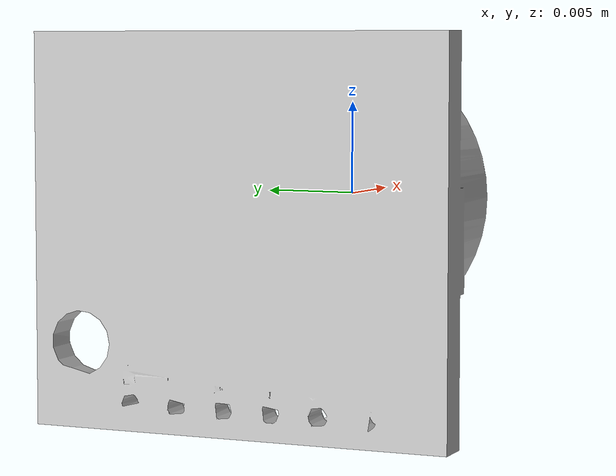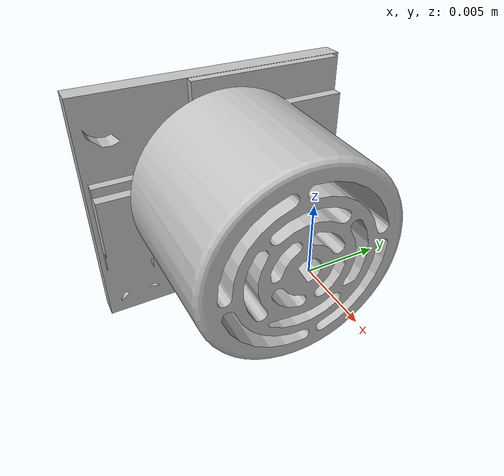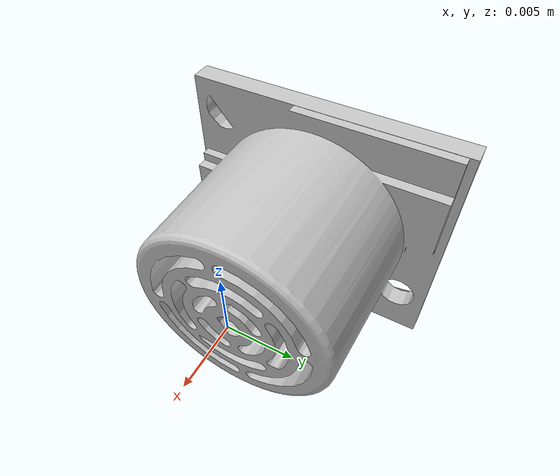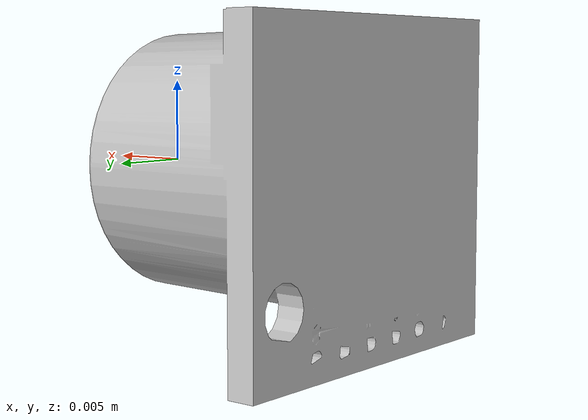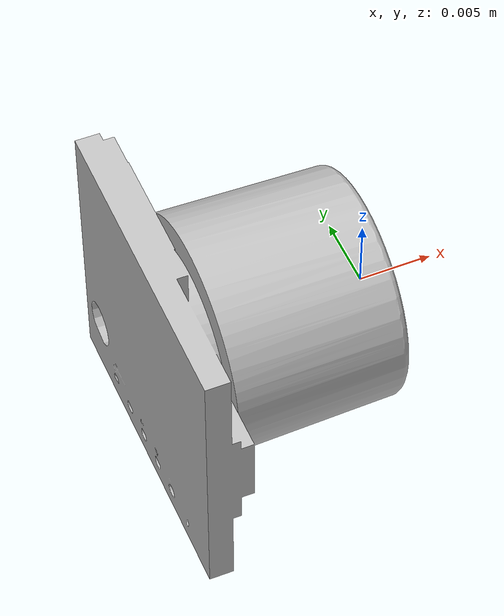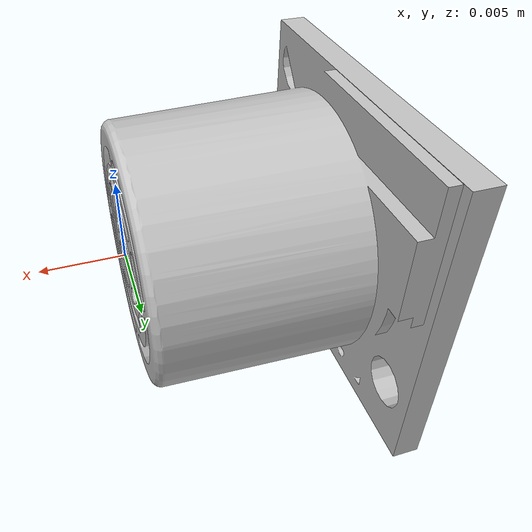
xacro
<robot name="Right_URF_link"><link name="Right_URF_link">
    <inertial>
      <origin rpy="0 0 0" xyz="-0.00942258060476561 1.68888278493408E-05 -0.000193183712129202" />
      <mass value="0.00277487854391409" />
      <inertia ixx="1.28314681514115E-07" ixy="-1.54585356342962E-10" ixz="3.11030599725548E-09" iyy="1.18940672500041E-07" iyz="4.3526583036484E-09" izz="1.28434121553124E-07" />
    </inertial>
    <visual>
      <origin rpy="0 0 0" xyz="0 0 0" />
      <geometry>
        <mesh filename="package://robotican_description/komodo/meshes/Right_URF_link.STL" />
      </geometry>
      <material name="">
        <color rgba="0.752941176470588 0.752941176470588 0.752941176470588 1" />
      </material>
    </visual>
    <collision>
      <origin rpy="0 0 0" xyz="0 0 0" />
      <geometry>
        <mesh filename="package://robotican_description/komodo/meshes/Right_URF_link.STL" />
      </geometry>
    </collision>
  </link>
  </robot>
